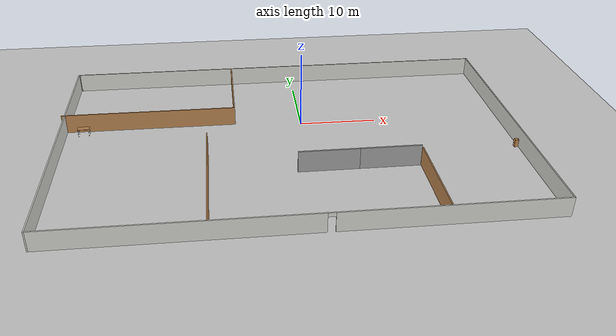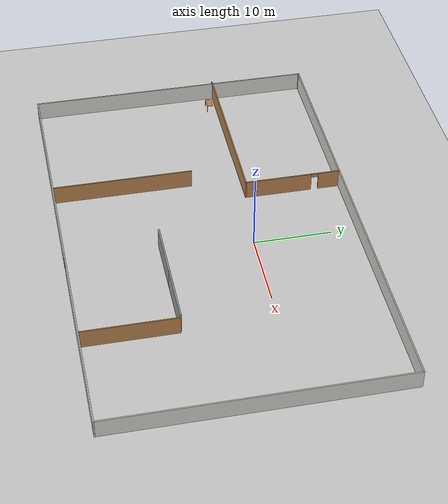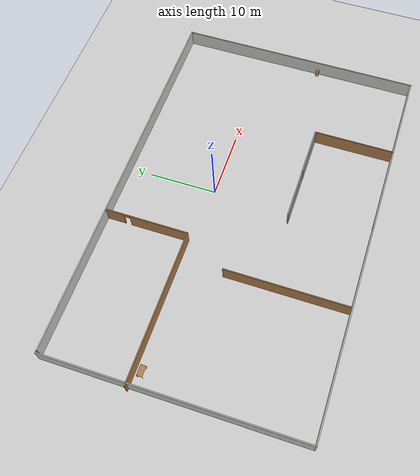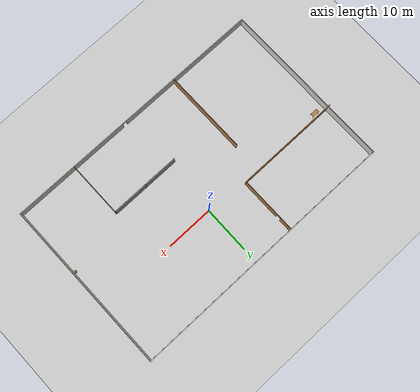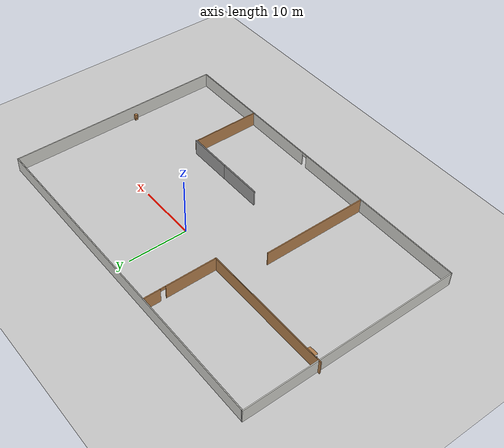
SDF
<sdf version="1.7">
 <world name="default">
  <light name="sun" type="directional">
   <pose>0 0 10 0 -0 0</pose>
   <diffuse>0.8 0.8 0.8 1</diffuse>
   <specular>0.2 0.2 0.2 1</specular>
   <attenuation>
    <range>1000</range>
    <constant>0.9</constant>
    <linear>0.01</linear>
    <quadratic>0.001</quadratic>
   </attenuation>
   <direction>-0.5 0.1 -0.9</direction>
   <spot><inner_angle>0</inner_angle><outer_angle>0</outer_angle><falloff>0</falloff></spot>
  </light>
  <model name="ground_plane">
   <static>1</static>
   <link name="link">
    <collision name="collision">
     <geometry><plane><normal>0 0 1</normal><size>100 100</size></plane></geometry>
     <surface><friction><ode><mu>100</mu><mu2>50</mu2></ode></friction></surface>
    </collision>
    <visual name="visual">
     <cast_shadows>0</cast_shadows>
     <geometry><plane><normal>0 0 1</normal><size>100 100</size></plane></geometry>
     <material>
      <script><uri>file://media/materials/scripts/gazebo.material</uri><name>Gazebo/Grey</name></script>
     </material>
    </visual>
   </link>
  </model>
  <gravity>0 0 -9.8</gravity>
  <magnetic_field>6e-06 2.3e-05 -4.2e-05</magnetic_field>
  <atmosphere type="adiabatic"/>
  <physics type="ode">
   <max_step_size>0.001</max_step_size>
   <real_time_factor>1</real_time_factor>
   <real_time_update_rate>1000</real_time_update_rate>
  </physics>
  <scene><ambient>0.4 0.4 0.4 1</ambient><background>0.7 0.7 0.7 1</background><shadows>1</shadows></scene>
  <audio><device>default</device></audio>
  <spherical_coordinates>
   <surface_model>EARTH_WGS84</surface_model>
   <latitude_deg>0</latitude_deg>
   <longitude_deg>0</longitude_deg>
   <elevation>0</elevation>
   <heading_deg>0</heading_deg>
  </spherical_coordinates>
  <model name="Final_cafe">
   <pose>-2.14736 -5.1584 0 0 -0 0</pose>
   <link name="Wall_10">
    <pose>-6.6368 12.232 0 0 -0 -1.5708</pose>
    <visual name="Wall_10_Visual_0">
     <pose>-4.81513 0 1.25 0 -0 0</pose>
     <geometry><box><size>2.86974 0.15 2.5</size></box></geometry>
     <material>
      <script><uri>file://media/materials/scripts/gazebo.material</uri><name>Gazebo/Wood</name></script>
      <ambient>1 1 1 1</ambient>
     </material>
     <meta><layer>0</layer></meta>
    </visual>
    <collision name="Wall_10_Collision_0">
     <geometry><box><size>2.86974 0.15 2.5</size></box></geometry>
     <pose>-4.81513 0 1.25 0 -0 0</pose>
    </collision>
    <visual name="Wall_10_Visual_1">
     <pose>1.88487 0 1.25 0 -0 0</pose>
     <geometry><box><size>8.73026 0.15 2.5</size></box></geometry>
     <material>
      <script><uri>file://media/materials/scripts/gazebo.material</uri><name>Gazebo/Wood</name></script>
      <ambient>1 1 1 1</ambient>
     </material>
     <meta><layer>0</layer></meta>
    </visual>
    <collision name="Wall_10_Collision_1">
     <geometry><box><size>8.73026 0.15 2.5</size></box></geometry>
     <pose>1.88487 0 1.25 0 -0 0</pose>
    </collision>
    <visual name="Wall_10_Visual_2">
     <pose>-2.93026 0 2.25 0 -0 0</pose>
     <geometry><box><size>0.9 0.15 0.5</size></box></geometry>
     <material>
      <script><uri>file://media/materials/scripts/gazebo.material</uri><name>Gazebo/Wood</name></script>
      <ambient>1 1 1 1</ambient>
     </material>
     <meta><layer>0</layer></meta>
    </visual>
    <collision name="Wall_10_Collision_2">
     <geometry><box><size>0.9 0.15 0.5</size></box></geometry>
     <pose>-2.93026 0 2.25 0 -0 0</pose>
    </collision>
   </link>
   <link name="Wall_11">
    <collision name="Wall_11_Collision">
     <geometry><box><size>22.5 0.15 2.5</size></box></geometry>
     <pose>0 0 1.25 0 -0 0</pose>
    </collision>
    <visual name="Wall_11_Visual">
     <pose>0 0 1.25 0 -0 0</pose>
     <geometry><box><size>22.5 0.15 2.5</size></box></geometry>
     <material>
      <script><uri>file://media/materials/scripts/gazebo.material</uri><name>Gazebo/Wood</name></script>
      <ambient>1 1 1 1</ambient>
     </material>
     <meta><layer>0</layer></meta>
    </visual>
    <pose>-17.8118 6.05696 0 0 -0 3.14159</pose>
   </link>
   <link name="Wall_13">
    <collision name="Wall_13_Collision">
     <geometry><box><size>18 0.15 2.5</size></box></geometry>
     <pose>0 0 1.25 0 -0 0</pose>
    </collision>
    <visual name="Wall_13_Visual">
     <pose>0 0 1.25 0 -0 0</pose>
     <geometry><box><size>18 0.15 2.5</size></box></geometry>
     <material>
      <script><uri>file://media/materials/scripts/gazebo.material</uri><name>Gazebo/Wood</name></script>
      <ambient>1 1 1 1</ambient>
     </material>
     <meta><layer>0</layer></meta>
    </visual>
    <pose>-10.2956 -9.36395 0 0 -0 1.5708</pose>
   </link>
   <link name="Wall_17">
    <collision name="Wall_17_Collision">
     <geometry><box><size>12 0.15 2.5</size></box></geometry>
     <pose>0 0 1.25 0 -0 0</pose>
    </collision>
    <visual name="Wall_17_Visual">
     <pose>0 0 1.25 0 -0 0</pose>
     <geometry><box><size>12 0.15 2.5</size></box></geometry>
     <material>
      <script><uri>file://media/materials/scripts/gazebo.material</uri><name>Gazebo/Wood</name></script>
      <ambient>1 1 1 1</ambient>
     </material>
     <meta><layer>0</layer></meta>
    </visual>
    <pose>15.5563 -12.4879 0 0 -0 1.5708</pose>
   </link>
   <link name="Wall_3">
    <collision name="Wall_3_Collision">
     <geometry><box><size>57.5 0.15 2.5</size></box></geometry>
     <pose>0 0 1.25 0 -0 0</pose>
    </collision>
    <visual name="Wall_3_Visual">
     <pose>0 0 1.25 0 -0 0</pose>
     <geometry><box><size>57.5 0.15 2.5</size></box></geometry>
     <material>
      <script><uri>file://media/materials/scripts/gazebo.material</uri><name>Gazebo/CeilingTiled</name></script>
      <ambient>1 1 1 1</ambient>
     </material>
     <meta><layer>0</layer></meta>
    </visual>
    <pose>0.311803 18.425 0 0 -0 0</pose>
   </link>
   <link name="Wall_4">
    <collision name="Wall_4_Collision">
     <geometry><box><size>37 0.15 2.5</size></box></geometry>
     <pose>0 0 1.25 0 -0 0</pose>
    </collision>
    <visual name="Wall_4_Visual">
     <pose>0 0 1.25 0 -0 0</pose>
     <geometry><box><size>37 0.15 2.5</size></box></geometry>
     <material>
      <script><uri>file://media/materials/scripts/gazebo.material</uri><name>Gazebo/CeilingTiled</name></script>
      <ambient>1 1 1 1</ambient>
     </material>
     <meta><layer>0</layer></meta>
    </visual>
    <pose>28.9868 -0 0 0 -0 -1.5708</pose>
   </link>
   <link name="Wall_5">
    <pose>0.186803 -18.425 0 0 -0 3.14159</pose>
    <visual name="Wall_5_Visual_0">
     <pose>-15.8905 0 1.25 0 -0 0</pose>
     <geometry><box><size>25.969 0.15 2.5</size></box></geometry>
     <material>
      <script><uri>file://media/materials/scripts/gazebo.material</uri><name>Gazebo/CeilingTiled</name></script>
      <ambient>1 1 1 1</ambient>
     </material>
     <meta><layer>0</layer></meta>
    </visual>
    <collision name="Wall_5_Collision_0">
     <geometry><box><size>25.969 0.15 2.5</size></box></geometry>
     <pose>-15.8905 0 1.25 0 -0 0</pose>
    </collision>
    <visual name="Wall_5_Visual_1">
     <pose>13.4345 0 1.25 0 -0 0</pose>
     <geometry><box><size>30.881 0.15 2.5</size></box></geometry>
     <material>
      <script><uri>file://media/materials/scripts/gazebo.material</uri><name>Gazebo/CeilingTiled</name></script>
      <ambient>1 1 1 1</ambient>
     </material>
     <meta><layer>0</layer></meta>
    </visual>
    <collision name="Wall_5_Collision_1">
     <geometry><box><size>30.881 0.15 2.5</size></box></geometry>
     <pose>13.4345 0 1.25 0 -0 0</pose>
    </collision>
    <visual name="Wall_5_Visual_2">
     <pose>-2.45598 0 2.25 0 -0 0</pose>
     <geometry><box><size>0.9 0.15 0.5</size></box></geometry>
     <material>
      <script><uri>file://media/materials/scripts/gazebo.material</uri><name>Gazebo/CeilingTiled</name></script>
      <ambient>1 1 1 1</ambient>
     </material>
     <meta><layer>0</layer></meta>
    </visual>
    <collision name="Wall_5_Collision_2">
     <geometry><box><size>0.9 0.15 0.5</size></box></geometry>
     <pose>-2.45598 0 2.25 0 -0 0</pose>
    </collision>
   </link>
   <link name="Wall_6">
    <collision name="Wall_6_Collision">
     <geometry><box><size>37 0.15 2.5</size></box></geometry>
     <pose>0 0 1.25 0 -0 0</pose>
    </collision>
    <visual name="Wall_6_Visual">
     <pose>0 0 1.25 0 -0 0</pose>
     <geometry><box><size>37 0.15 2.5</size></box></geometry>
     <material>
      <script><uri>file://media/materials/scripts/gazebo.material</uri><name>Gazebo/CeilingTiled</name></script>
      <ambient>1 1 1 1</ambient>
     </material>
     <meta><layer>0</layer></meta>
    </visual>
    <pose>-28.6132 -0 0 0 -0 1.5708</pose>
   </link>
   <link name="Wall_7">
    <collision name="Wall_7_Collision">
     <geometry><box><size>0.4 0.15 2.5</size></box></geometry>
     <pose>0 0 1.25 0 -0 0</pose>
    </collision>
    <visual name="Wall_7_Visual">
     <pose>0 0 1.25 0 -0 0</pose>
     <geometry><box><size>0.4 0.15 2.5</size></box></geometry>
     <material>
      <script><uri>file://media/materials/scripts/gazebo.material</uri><name>Gazebo/Grey</name></script>
      <ambient>1 1 1 1</ambient>
     </material>
     <meta><layer>0</layer></meta>
    </visual>
    <pose>-28.4882 18.425 0 0 -0 0</pose>
   </link>
   <static>1</static>
  </model>
  <model name="table">
   <static>1</static>
   <link name="link">
    <collision name="surface_collision_4">
     <pose>0 0 1 0 -0 0</pose>
     <geometry><box><size>1.5 0.8 0.03</size></box></geometry>
     <surface><friction><ode><mu>0.6</mu><mu2>0.6</mu2></ode></friction></surface>
    </collision>
    <visual name="visual1">
     <pose>0 0 1 0 -0 0</pose>
     <geometry><box><size>1.5 0.8 0.03</size></box></geometry>
     <material>
      <script><uri>file://media/materials/scripts/gazebo.material</uri><name>Gazebo/Wood</name></script>
     </material>
    </visual>
    <collision name="front_left_leg_collision">
     <pose>0.68 0.38 0.5 0 -0 0</pose>
     <geometry><cylinder><radius>0.02</radius><length>1</length></cylinder></geometry>
    </collision>
    <visual name="surface_visual">
     <pose>0.68 0.38 0.5 0 -0 0</pose>
     <geometry><cylinder><radius>0.02</radius><length>1</length></cylinder></geometry>
     <material>
      <script><uri>file://media/materials/scripts/gazebo.material</uri><name>Gazebo/Grey</name></script>
     </material>
    </visual>
    <collision name="front_right_leg_collision">
     <pose>0.68 -0.38 0.5 0 -0 0</pose>
     <geometry><cylinder><radius>0.02</radius><length>1</length></cylinder></geometry>
    </collision>
    <visual name="front_left_leg_visual">
     <pose>0.68 -0.38 0.5 0 -0 0</pose>
     <geometry><cylinder><radius>0.02</radius><length>1</length></cylinder></geometry>
     <material>
      <script><uri>file://media/materials/scripts/gazebo.material</uri><name>Gazebo/Grey</name></script>
     </material>
    </visual>
    <collision name="back_right_leg_collision">
     <pose>-0.68 -0.38 0.5 0 -0 0</pose>
     <geometry><cylinder><radius>0.02</radius><length>1</length></cylinder></geometry>
    </collision>
    <visual name="back_right_leg_visual_1">
     <pose>-0.68 -0.38 0.5 0 -0 0</pose>
     <geometry><cylinder><radius>0.02</radius><length>1</length></cylinder></geometry>
     <material>
      <script><uri>file://media/materials/scripts/gazebo.material</uri><name>Gazebo/Grey</name></script>
     </material>
    </visual>
    <collision name="back_left_leg_collision">
     <pose>-0.68 0.38 0.5 0 -0 0</pose>
     <geometry><cylinder><radius>0.02</radius><length>1</length></cylinder></geometry>
    </collision>
    <visual name="back_right_leg_visual_2">
     <pose>-0.68 0.38 0.5 0 -0 0</pose>
     <geometry><cylinder><radius>0.02</radius><length>1</length></cylinder></geometry>
     <material>
      <script><uri>file://media/materials/scripts/gazebo.material</uri><name>Gazebo/Grey</name></script>
     </material>
    </visual>
   </link>
   <pose>-28.4204 -0.051482 0 0 -0 0</pose>
  </model>
  <model name="cabinet">
   <static>1</static>
   <link name="cabinet_bottom_plate">
    <inertial>
     <pose>0 0 -1 0 -0 0</pose>
     <inertia><ixx>2.05</ixx><ixy>0</ixy><ixz>0</ixz><iyy>2.05</iyy><iyz>0</iyz><izz>2.05</izz></inertia>
     <mass>25</mass>
    </inertial>
    <collision name="cabinet_bottom_plate_geom">
     <pose>0 0 0.01 0 -0 0</pose>
     <geometry><box><size>0.45 0.45 0.02</size></box></geometry>
    </collision>
    <visual name="cabinet_bottom_plate_geom_visual">
     <pose>0 0 0.01 0 -0 0</pose>
     <geometry><box><size>0.45 0.45 0.02</size></box></geometry>
     <material>
      <script><uri>file://media/materials/scripts/gazebo.material</uri><name>Gazebo/Wood</name></script>
     </material>
    </visual>
    <collision name="cabinet_bottom_plate_geom_cabinet_back_plate">
     <pose>0.235 0 0.51 0 -0 0</pose>
     <geometry><box><size>0.02 0.45 1.02</size></box></geometry>
    </collision>
    <visual name="cabinet_bottom_plate_geom_cabinet_back_plate_visual">
     <pose>0.235 0 0.51 0 -0 0</pose>
     <geometry><box><size>0.02 0.45 1.02</size></box></geometry>
     <material>
      <script><uri>file://media/materials/scripts/gazebo.material</uri><name>Gazebo/Wood</name></script>
     </material>
    </visual>
    <collision name="cabinet_bottom_plate_geom_cabinet_left_plate">
     <pose>0 0.235 0.51 0 -0 0</pose>
     <geometry><box><size>0.45 0.02 1.02</size></box></geometry>
    </collision>
    <visual name="cabinet_bottom_plate_geom_cabinet_left_plate_visual">
     <pose>0 0.235 0.51 0 -0 0</pose>
     <geometry><box><size>0.45 0.02 1.02</size></box></geometry>
     <material>
      <script><uri>file://media/materials/scripts/gazebo.material</uri><name>Gazebo/Wood</name></script>
     </material>
    </visual>
    <collision name="cabinet_bottom_plate_geom_cabinet_middle_plate">
     <pose>0 0 0.51 0 -0 0</pose>
     <geometry><box><size>0.45 0.45 0.02</size></box></geometry>
    </collision>
    <visual name="cabinet_bottom_plate_geom_cabinet_middle_plate_visual">
     <pose>0 0 0.51 0 -0 0</pose>
     <geometry><box><size>0.45 0.45 0.02</size></box></geometry>
     <material>
      <script><uri>file://media/materials/scripts/gazebo.material</uri><name>Gazebo/Wood</name></script>
     </material>
    </visual>
    <collision name="cabinet_bottom_plate_geom_cabinet_right_plate">
     <pose>0 -0.235 0.51 0 -0 0</pose>
     <geometry><box><size>0.45 0.02 1.02</size></box></geometry>
    </collision>
    <visual name="cabinet_bottom_plate_geom_cabinet_right_plate_visual">
     <pose>0 -0.235 0.51 0 -0 0</pose>
     <geometry><box><size>0.45 0.02 1.02</size></box></geometry>
     <material>
      <script><uri>file://media/materials/scripts/gazebo.material</uri><name>Gazebo/Wood</name></script>
     </material>
    </visual>
    <collision name="cabinet_bottom_plate_geom_cabinet_top_plate">
     <pose>0 0 1.01 0 -0 0</pose>
     <geometry><box><size>0.45 0.45 0.02</size></box></geometry>
    </collision>
    <visual name="cabinet_bottom_plate_geom_cabinet_top_plate_visual">
     <pose>0 0 1.01 0 -0 0</pose>
     <geometry><box><size>0.45 0.45 0.02</size></box></geometry>
     <material>
      <script><uri>file://media/materials/scripts/gazebo.material</uri><name>Gazebo/Wood</name></script>
     </material>
    </visual>
   </link>
   <pose>26.4831 -8.57904 0 0 -0 0</pose>
  </model>
  <model name="grey_wall">
   <static>1</static>
   <link name="link">
    <pose>0 0 1.4 0 -0 0</pose>
    <collision name="collision"><geometry><box><size>7.5 0.2 2.8</size></box></geometry></collision>
    <visual name="visual">
     <cast_shadows>0</cast_shadows>
     <geometry><box><size>7.5 0.2 2.8</size></box></geometry>
     <material>
      <script>
       <uri>model://grey_wall/materials/scripts</uri>
       <uri>model://grey_wall/materials/textures</uri>
       <name>vrc/grey_wall</name>
      </script>
     </material>
    </visual>
   </link>
   <pose>9.53399 -11.6418 0 0 -0 0</pose>
  </model>
  <model name="grey_wall_0">
   <static>1</static>
   <link name="link">
    <pose>0 0 1.4 0 -0 0</pose>
    <collision name="collision"><geometry><box><size>7.5 0.2 2.8</size></box></geometry></collision>
    <visual name="visual">
     <cast_shadows>0</cast_shadows>
     <geometry><box><size>7.5 0.2 2.8</size></box></geometry>
     <material>
      <script>
       <uri>model://grey_wall/materials/scripts</uri>
       <uri>model://grey_wall/materials/textures</uri>
       <name>vrc/grey_wall</name>
      </script>
     </material>
    </visual>
   </link>
   <pose>2.03716 -11.6528 0 0 -0 0</pose>
  </model>
 </world>
</sdf>
